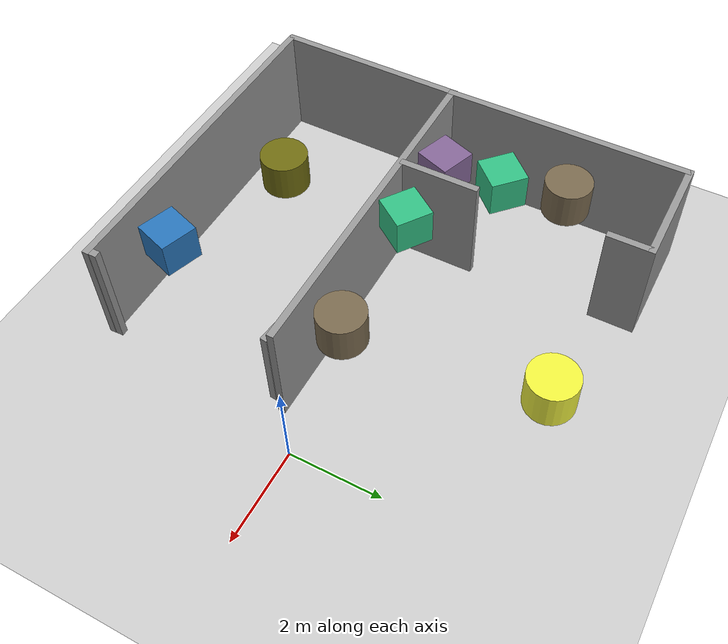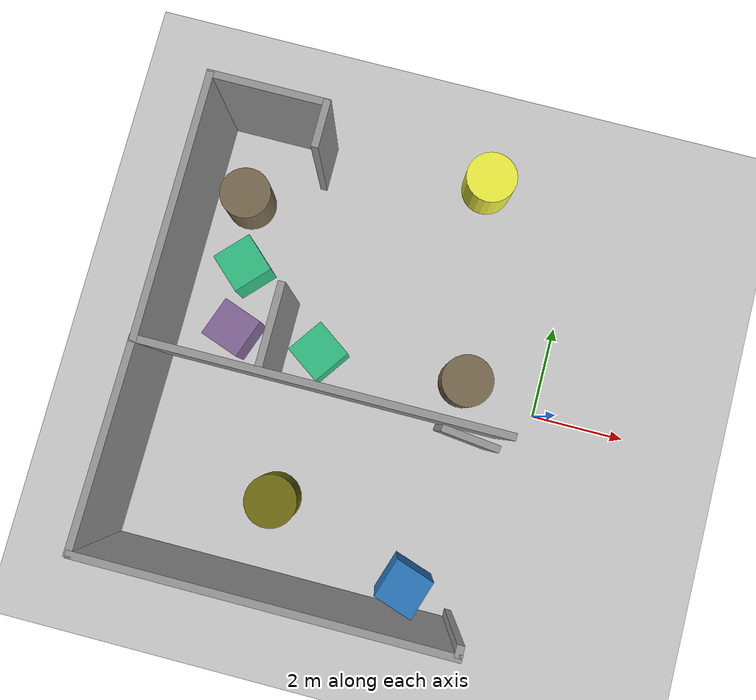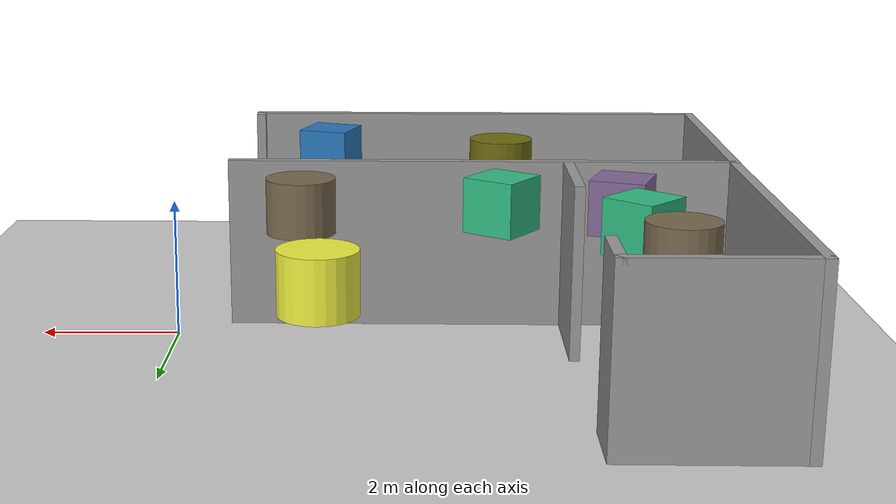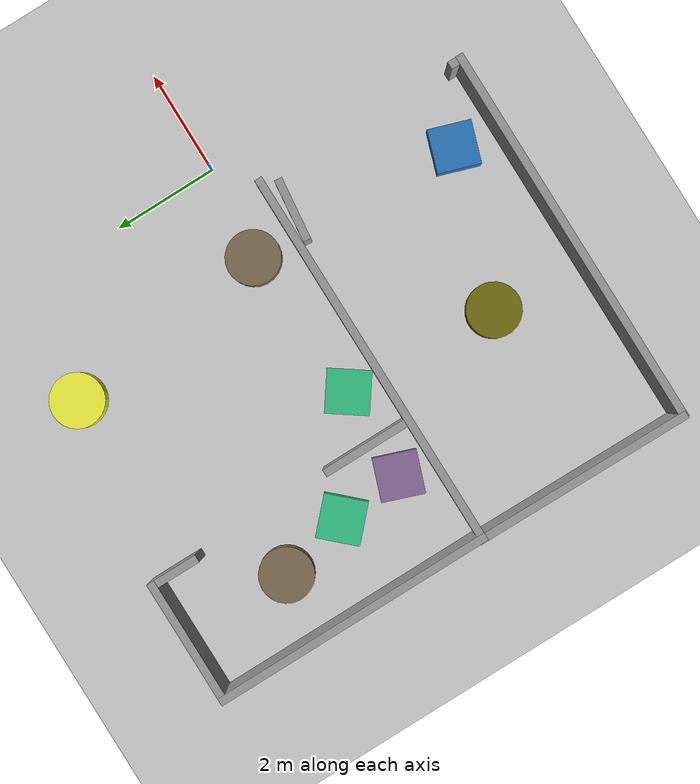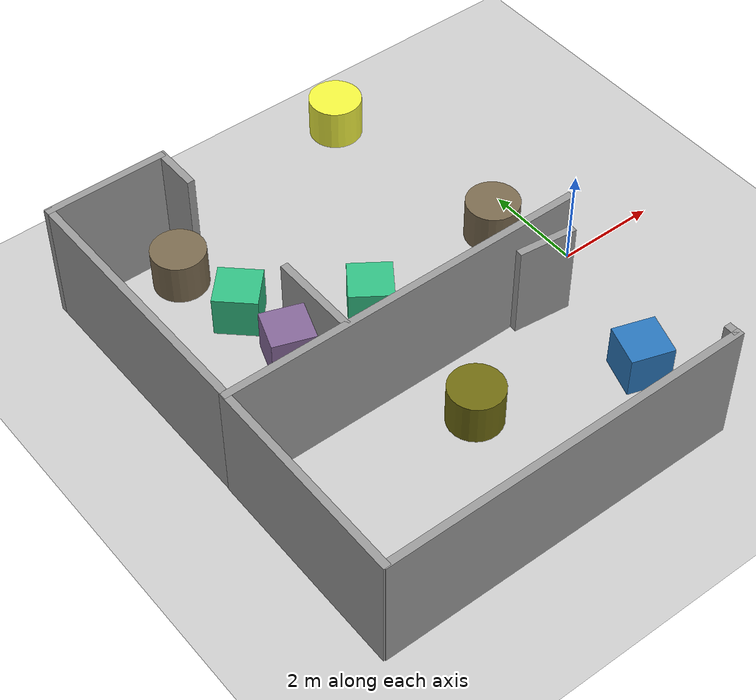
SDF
<sdf version="1.7">
 <world name="default">
  <model name="demo_clean">
   <static>1</static>
   <link name="Wall_0">
    <collision name="Wall_0_Collision">
     <geometry><box><size>5.5 0.15 2.5</size></box></geometry>
     <pose>0 0 1.25 0 -0 0</pose>
     <surface>
      <friction>
       <ode><mu>1</mu><mu2>1</mu2><fdir1>0 0 0</fdir1><slip1>0</slip1><slip2>0</slip2></ode>
       <torsional>
        <coefficient>1</coefficient>
        <patch_radius>0</patch_radius>
        <surface_radius>0</surface_radius>
        <use_patch_radius>1</use_patch_radius>
        <ode><slip>0</slip></ode>
       </torsional>
      </friction>
      <bounce><restitution_coefficient>0</restitution_coefficient><threshold>1e+06</threshold></bounce>
      <contact>
       <collide_without_contact>0</collide_without_contact>
       <collide_without_contact_bitmask>1</collide_without_contact_bitmask>
       <collide_bitmask>1</collide_bitmask>
       <ode>
        <soft_cfm>0</soft_cfm>
        <soft_erp>0.2</soft_erp>
        <kp>1e+13</kp>
        <kd>1</kd>
        <max_vel>0.01</max_vel>
        <min_depth>0</min_depth>
       </ode>
       <bullet>
        <split_impulse>1</split_impulse>
        <split_impulse_penetration_threshold>-0.01</split_impulse_penetration_threshold>
        <soft_cfm>0</soft_cfm>
        <soft_erp>0.2</soft_erp>
        <kp>1e+13</kp>
        <kd>1</kd>
       </bullet>
      </contact>
     </surface>
    </collision>
    <visual name="Wall_0_Visual">
     <geometry><box><size>5.5 0.15 2.5</size></box></geometry>
     <material>
      <script><name>Gazebo/Grey</name><uri>file://media/materials/scripts/gazebo.material</uri></script>
      <ambient>1 1 1 1</ambient>
      <shader type="pixel"><normal_map>default</normal_map></shader>
     </material>
     <pose>0 0 1.25 0 -0 0</pose>
    </visual>
    <pose>-8.14649 2.06618 0 0 0 -1.5708</pose>
   </link>
   <link name="Wall_1">
    <collision name="Wall_1_Collision">
     <geometry><box><size>4.27044 0.15 2.5</size></box></geometry>
     <pose>0 0 1.25 0 -0 0</pose>
     <surface>
      <friction>
       <ode><mu>1</mu><mu2>1</mu2><fdir1>0 0 0</fdir1><slip1>0</slip1><slip2>0</slip2></ode>
       <torsional>
        <coefficient>1</coefficient>
        <patch_radius>0</patch_radius>
        <surface_radius>0</surface_radius>
        <use_patch_radius>1</use_patch_radius>
        <ode><slip>0</slip></ode>
       </torsional>
      </friction>
      <bounce><restitution_coefficient>0</restitution_coefficient><threshold>1e+06</threshold></bounce>
      <contact>
       <collide_without_contact>0</collide_without_contact>
       <collide_without_contact_bitmask>1</collide_without_contact_bitmask>
       <collide_bitmask>1</collide_bitmask>
       <ode>
        <soft_cfm>0</soft_cfm>
        <soft_erp>0.2</soft_erp>
        <kp>1e+13</kp>
        <kd>1</kd>
        <max_vel>0.01</max_vel>
        <min_depth>0</min_depth>
       </ode>
       <bullet>
        <split_impulse>1</split_impulse>
        <split_impulse_penetration_threshold>-0.01</split_impulse_penetration_threshold>
        <soft_cfm>0</soft_cfm>
        <soft_erp>0.2</soft_erp>
        <kp>1e+13</kp>
        <kd>1</kd>
       </bullet>
      </contact>
     </surface>
    </collision>
    <visual name="Wall_1_Visual">
     <geometry><box><size>4.27044 0.15 2.5</size></box></geometry>
     <material>
      <script><name>Gazebo/Grey</name><uri>file://media/materials/scripts/gazebo.material</uri></script>
      <ambient>1 1 1 1</ambient>
      <shader type="pixel"><normal_map>default</normal_map></shader>
     </material>
     <pose>0 0 1.25 0 -0 0</pose>
    </visual>
    <pose>-8.17617 -2.66151 0 0 0 -1.58051</pose>
   </link>
   <link name="Wall_2">
    <collision name="Wall_2_Collision">
     <geometry><box><size>7.5 0.15 2.5</size></box></geometry>
     <pose>0 0 1.25 0 -0 0</pose>
     <surface>
      <friction>
       <ode><mu>1</mu><mu2>1</mu2><fdir1>0 0 0</fdir1><slip1>0</slip1><slip2>0</slip2></ode>
       <torsional>
        <coefficient>1</coefficient>
        <patch_radius>0</patch_radius>
        <surface_radius>0</surface_radius>
        <use_patch_radius>1</use_patch_radius>
        <ode><slip>0</slip></ode>
       </torsional>
      </friction>
      <bounce><restitution_coefficient>0</restitution_coefficient><threshold>1e+06</threshold></bounce>
      <contact>
       <collide_without_contact>0</collide_without_contact>
       <collide_without_contact_bitmask>1</collide_without_contact_bitmask>
       <collide_bitmask>1</collide_bitmask>
       <ode>
        <soft_cfm>0</soft_cfm>
        <soft_erp>0.2</soft_erp>
        <kp>1e+13</kp>
        <kd>1</kd>
        <max_vel>0.01</max_vel>
        <min_depth>0</min_depth>
       </ode>
       <bullet>
        <split_impulse>1</split_impulse>
        <split_impulse_penetration_threshold>-0.01</split_impulse_penetration_threshold>
        <soft_cfm>0</soft_cfm>
        <soft_erp>0.2</soft_erp>
        <kp>1e+13</kp>
        <kd>1</kd>
       </bullet>
      </contact>
     </surface>
    </collision>
    <visual name="Wall_2_Visual">
     <geometry><box><size>7.5 0.15 2.5</size></box></geometry>
     <material>
      <script><name>Gazebo/Grey</name><uri>file://media/materials/scripts/gazebo.material</uri></script>
      <ambient>1 1 1 1</ambient>
      <shader type="pixel"><normal_map>default</normal_map></shader>
     </material>
     <pose>0 0 1.25 0 -0 0</pose>
    </visual>
    <pose>-4.49149 -4.74 0 0 -0 0</pose>
   </link>
   <link name="Wall_21_clone_0_clone_0_clone_clone">
    <gravity>0</gravity>
    <collision name="Wall_21_Collision">
     <geometry><box><size>1.1941 0.15 1.96033</size></box></geometry>
     <pose>0 0 1.25 0 -0 0</pose>
     <surface>
      <friction>
       <ode><mu>1</mu><mu2>1</mu2><fdir1>0 0 0</fdir1><slip1>0</slip1><slip2>0</slip2></ode>
       <torsional>
        <coefficient>1</coefficient>
        <patch_radius>0</patch_radius>
        <surface_radius>0</surface_radius>
        <use_patch_radius>1</use_patch_radius>
        <ode><slip>0</slip></ode>
       </torsional>
      </friction>
      <bounce><restitution_coefficient>0</restitution_coefficient><threshold>1e+06</threshold></bounce>
      <contact>
       <collide_without_contact>0</collide_without_contact>
       <collide_without_contact_bitmask>1</collide_without_contact_bitmask>
       <collide_bitmask>1</collide_bitmask>
       <ode>
        <soft_cfm>0</soft_cfm>
        <soft_erp>0.2</soft_erp>
        <kp>1e+13</kp>
        <kd>1</kd>
        <max_vel>0.01</max_vel>
        <min_depth>0</min_depth>
       </ode>
       <bullet>
        <split_impulse>1</split_impulse>
        <split_impulse_penetration_threshold>-0.01</split_impulse_penetration_threshold>
        <soft_cfm>0</soft_cfm>
        <soft_erp>0.2</soft_erp>
        <kp>1e+13</kp>
        <kd>1</kd>
       </bullet>
      </contact>
     </surface>
    </collision>
    <visual name="Wall_21_Visual">
     <geometry><box><size>1.1941 0.15 1.96033</size></box></geometry>
     <material>
      <script><name>Gazebo/Grey</name><uri>file://media/materials/scripts/gazebo.material</uri></script>
      <ambient>1 1 1 1</ambient>
      <shader type="pixel"><normal_map>__default__</normal_map></shader>
      <diffuse>0.7 0.7 0.7 1</diffuse>
      <specular>0.01 0.01 0.01 1</specular>
      <emissive>0 0 0 1</emissive>
     </material>
     <pose>0 0 1.25 0 -0 0</pose>
    </visual>
    <inertial>
     <inertia><ixx>0</ixx><iyy>0</iyy><izz>0</izz><ixy>0</ixy><ixz>0</ixz><iyz>0</iyz></inertia>
     <mass>1</mass>
    </inertial>
    <pose>-1.47342 -0.839052 -0.23202 0 -0 3.0297</pose>
   </link>
   <link name="Wall_21_clone_clone">
    <collision name="Wall_21_Collision">
     <geometry><box><size>0.240964 0.15 2.5</size></box></geometry>
     <pose>0 0 1.25 0 -0 0</pose>
     <surface>
      <friction>
       <ode><mu>1</mu><mu2>1</mu2><fdir1>0 0 0</fdir1><slip1>0</slip1><slip2>0</slip2></ode>
       <torsional>
        <coefficient>1</coefficient>
        <patch_radius>0</patch_radius>
        <surface_radius>0</surface_radius>
        <use_patch_radius>1</use_patch_radius>
        <ode><slip>0</slip></ode>
       </torsional>
      </friction>
      <bounce><restitution_coefficient>0</restitution_coefficient><threshold>1e+06</threshold></bounce>
      <contact>
       <collide_without_contact>0</collide_without_contact>
       <collide_without_contact_bitmask>1</collide_without_contact_bitmask>
       <collide_bitmask>1</collide_bitmask>
       <ode>
        <soft_cfm>0</soft_cfm>
        <soft_erp>0.2</soft_erp>
        <kp>1e+13</kp>
        <kd>1</kd>
        <max_vel>0.01</max_vel>
        <min_depth>0</min_depth>
       </ode>
       <bullet>
        <split_impulse>1</split_impulse>
        <split_impulse_penetration_threshold>-0.01</split_impulse_penetration_threshold>
        <soft_cfm>0</soft_cfm>
        <soft_erp>0.2</soft_erp>
        <kp>1e+13</kp>
        <kd>1</kd>
       </bullet>
      </contact>
     </surface>
    </collision>
    <visual name="Wall_21_Visual">
     <geometry><box><size>0.240964 0.15 2.5</size></box></geometry>
     <material>
      <script><name>Gazebo/Grey</name><uri>file://media/materials/scripts/gazebo.material</uri></script>
      <ambient>1 1 1 1</ambient>
      <shader type="pixel"><normal_map>default</normal_map></shader>
     </material>
     <pose>0 0 1.25 0 -0 0</pose>
    </visual>
    <inertial>
     <inertia><ixx>0</ixx><iyy>0</iyy><izz>0</izz><ixy>0</ixy><ixz>0</ixz><iyz>0</iyz></inertia>
     <mass>1</mass>
    </inertial>
    <pose>-0.824993 -4.62184 0 0 0 -1.5708</pose>
   </link>
   <link name="Wall_4">
    <collision name="Wall_4_Collision">
     <geometry><box><size>7.5 0.15 2.5</size></box></geometry>
     <pose>0 0 1.25 0 -0 0</pose>
     <surface>
      <friction>
       <ode><mu>1</mu><mu2>1</mu2><fdir1>0 0 0</fdir1><slip1>0</slip1><slip2>0</slip2></ode>
       <torsional>
        <coefficient>1</coefficient>
        <patch_radius>0</patch_radius>
        <surface_radius>0</surface_radius>
        <use_patch_radius>1</use_patch_radius>
        <ode><slip>0</slip></ode>
       </torsional>
      </friction>
      <bounce><restitution_coefficient>0</restitution_coefficient><threshold>1e+06</threshold></bounce>
      <contact>
       <collide_without_contact>0</collide_without_contact>
       <collide_without_contact_bitmask>1</collide_without_contact_bitmask>
       <collide_bitmask>1</collide_bitmask>
       <ode>
        <soft_cfm>0</soft_cfm>
        <soft_erp>0.2</soft_erp>
        <kp>1e+13</kp>
        <kd>1</kd>
        <max_vel>0.01</max_vel>
        <min_depth>0</min_depth>
       </ode>
       <bullet>
        <split_impulse>1</split_impulse>
        <split_impulse_penetration_threshold>-0.01</split_impulse_penetration_threshold>
        <soft_cfm>0</soft_cfm>
        <soft_erp>0.2</soft_erp>
        <kp>1e+13</kp>
        <kd>1</kd>
       </bullet>
      </contact>
     </surface>
    </collision>
    <visual name="Wall_4_Visual">
     <geometry><box><size>7.5 0.15 2.5</size></box></geometry>
     <material>
      <script><name>Gazebo/Grey</name><uri>file://media/materials/scripts/gazebo.material</uri></script>
      <ambient>1 1 1 1</ambient>
      <shader type="pixel"><normal_map>default</normal_map></shader>
     </material>
     <pose>0 0 1.25 0 -0 0</pose>
    </visual>
    <pose>-4.47149 -0.608824 0 0 -0 3.14159</pose>
   </link>
   <link name="Wall_44">
    <collision name="Wall_44_Collision">
     <geometry><box><size>1.75 0.15 2.5</size></box></geometry>
     <pose>0 0 1.25 0 -0 0</pose>
     <surface>
      <friction>
       <ode><mu>1</mu><mu2>1</mu2><fdir1>0 0 0</fdir1><slip1>0</slip1><slip2>0</slip2></ode>
       <torsional>
        <coefficient>1</coefficient>
        <patch_radius>0</patch_radius>
        <surface_radius>0</surface_radius>
        <use_patch_radius>1</use_patch_radius>
        <ode><slip>0</slip></ode>
       </torsional>
      </friction>
      <bounce><restitution_coefficient>0</restitution_coefficient><threshold>1e+06</threshold></bounce>
      <contact>
       <collide_without_contact>0</collide_without_contact>
       <collide_without_contact_bitmask>1</collide_without_contact_bitmask>
       <collide_bitmask>1</collide_bitmask>
       <ode>
        <soft_cfm>0</soft_cfm>
        <soft_erp>0.2</soft_erp>
        <kp>1e+13</kp>
        <kd>1</kd>
        <max_vel>0.01</max_vel>
        <min_depth>0</min_depth>
       </ode>
       <bullet>
        <split_impulse>1</split_impulse>
        <split_impulse_penetration_threshold>-0.01</split_impulse_penetration_threshold>
        <soft_cfm>0</soft_cfm>
        <soft_erp>0.2</soft_erp>
        <kp>1e+13</kp>
        <kd>1</kd>
       </bullet>
      </contact>
     </surface>
    </collision>
    <visual name="Wall_44_Visual">
     <geometry><box><size>1.75 0.15 2.5</size></box></geometry>
     <material>
      <script><name>Gazebo/Grey</name><uri>file://media/materials/scripts/gazebo.material</uri></script>
      <ambient>1 1 1 1</ambient>
      <shader type="pixel"><normal_map>default</normal_map></shader>
     </material>
     <pose>0 0 1.25 0 -0 0</pose>
    </visual>
    <pose>-5.71903 0.262602 0 0 0 -1.5708</pose>
   </link>
   <link name="Wall_6">
    <collision name="Wall_6_Collision">
     <geometry><box><size>2.5 0.15 2.5</size></box></geometry>
     <pose>0 0 1.25 0 -0 0</pose>
     <surface>
      <friction>
       <ode><mu>1</mu><mu2>1</mu2><fdir1>0 0 0</fdir1><slip1>0</slip1><slip2>0</slip2></ode>
       <torsional>
        <coefficient>1</coefficient>
        <patch_radius>0</patch_radius>
        <surface_radius>0</surface_radius>
        <use_patch_radius>1</use_patch_radius>
        <ode><slip>0</slip></ode>
       </torsional>
      </friction>
      <bounce><restitution_coefficient>0</restitution_coefficient><threshold>1e+06</threshold></bounce>
      <contact>
       <collide_without_contact>0</collide_without_contact>
       <collide_without_contact_bitmask>1</collide_without_contact_bitmask>
       <collide_bitmask>1</collide_bitmask>
       <ode>
        <soft_cfm>0</soft_cfm>
        <soft_erp>0.2</soft_erp>
        <kp>1e+13</kp>
        <kd>1</kd>
        <max_vel>0.01</max_vel>
        <min_depth>0</min_depth>
       </ode>
       <bullet>
        <split_impulse>1</split_impulse>
        <split_impulse_penetration_threshold>-0.01</split_impulse_penetration_threshold>
        <soft_cfm>0</soft_cfm>
        <soft_erp>0.2</soft_erp>
        <kp>1e+13</kp>
        <kd>1</kd>
       </bullet>
      </contact>
     </surface>
    </collision>
    <visual name="Wall_6_Visual">
     <geometry><box><size>2.5 0.15 2.5</size></box></geometry>
     <material>
      <script><name>Gazebo/Grey</name><uri>file://media/materials/scripts/gazebo.material</uri></script>
      <ambient>1 1 1 1</ambient>
      <shader type="pixel"><normal_map>default</normal_map></shader>
     </material>
     <pose>0 0 1.25 0 -0 0</pose>
    </visual>
    <pose>-6.97149 4.74118 0 0 -0 0</pose>
   </link>
   <link name="Wall_7">
    <collision name="Wall_7_Collision">
     <geometry><box><size>1 0.15 2.5</size></box></geometry>
     <pose>0 0 1.25 0 -0 0</pose>
     <surface>
      <friction>
       <ode><mu>1</mu><mu2>1</mu2><fdir1>0 0 0</fdir1><slip1>0</slip1><slip2>0</slip2></ode>
       <torsional>
        <coefficient>1</coefficient>
        <patch_radius>0</patch_radius>
        <surface_radius>0</surface_radius>
        <use_patch_radius>1</use_patch_radius>
        <ode><slip>0</slip></ode>
       </torsional>
      </friction>
      <bounce><restitution_coefficient>0</restitution_coefficient><threshold>1e+06</threshold></bounce>
      <contact>
       <collide_without_contact>0</collide_without_contact>
       <collide_without_contact_bitmask>1</collide_without_contact_bitmask>
       <collide_bitmask>1</collide_bitmask>
       <ode>
        <soft_cfm>0</soft_cfm>
        <soft_erp>0.2</soft_erp>
        <kp>1e+13</kp>
        <kd>1</kd>
        <max_vel>0.01</max_vel>
        <min_depth>0</min_depth>
       </ode>
       <bullet>
        <split_impulse>1</split_impulse>
        <split_impulse_penetration_threshold>-0.01</split_impulse_penetration_threshold>
        <soft_cfm>0</soft_cfm>
        <soft_erp>0.2</soft_erp>
        <kp>1e+13</kp>
        <kd>1</kd>
       </bullet>
      </contact>
     </surface>
    </collision>
    <visual name="Wall_7_Visual">
     <geometry><box><size>1 0.15 2.5</size></box></geometry>
     <material>
      <script><name>Gazebo/Grey</name><uri>file://media/materials/scripts/gazebo.material</uri></script>
      <ambient>1 1 1 1</ambient>
      <shader type="pixel"><normal_map>default</normal_map></shader>
     </material>
     <pose>0 0 1.25 0 -0 0</pose>
    </visual>
    <pose>-5.79649 4.31618 0 0 0 -1.5708</pose>
   </link>
  </model>
  <model name="static_cylinder">
   <pose>-1.84476 0.195313 2 0 -0 0.460965</pose>
   <static>1</static>
   <allow_auto_disable>0</allow_auto_disable>
   <link name="link">
    <collision name="collision">
     <geometry><cylinder><radius>0.5</radius><length>0.8</length></cylinder></geometry>
     <max_contacts>20</max_contacts>
    </collision>
    <visual name="visual">
     <geometry><cylinder><radius>0.5</radius><length>0.8</length></cylinder></geometry>
     <material>
      <ambient>0.478431 0.415686 0.309804 1</ambient>
      <diffuse>0.478431 0.415686 0.309804 1</diffuse>
     </material>
    </visual>
   </link>
  </model>
  <model name="dyn_box_1">
   <pose>-6.44214 0.056247 2 0 0 -0.344654</pose>
   <static>1</static>
   <allow_auto_disable>0</allow_auto_disable>
   <link name="link">
    <collision name="collision">
     <geometry><box><size>0.8 0.8 0.8</size></box></geometry>
     <max_contacts>20</max_contacts>
    </collision>
    <visual name="visual">
     <geometry><box><size>0.8 0.8 0.8</size></box></geometry>
     <material>
      <ambient>0.521569 0.403922 0.596078 1</ambient>
      <diffuse>0.521569 0.403922 0.596078 1</diffuse>
     </material>
    </visual>
   </link>
  </model>
  <model name="static_cylinder_1">
   <pose>-4.86022 -2.90154 2 0 0 -1.1687</pose>
   <static>1</static>
   <allow_auto_disable>0</allow_auto_disable>
   <link name="link">
    <collision name="collision">
     <geometry><cylinder><radius>0.5</radius><length>0.8</length></cylinder></geometry>
     <max_contacts>20</max_contacts>
    </collision>
    <visual name="visual">
     <geometry><cylinder><radius>0.5</radius><length>0.8</length></cylinder></geometry>
     <material>
      <ambient>0.439216 0.423529 0.0666667 1</ambient>
      <diffuse>0.439216 0.423529 0.0666667 1</diffuse>
     </material>
    </visual>
   </link>
  </model>
  <model name="static_cylinder_3">
   <pose>-2.33497 4.13854 2 0 -0 0.502179</pose>
   <static>1</static>
   <allow_auto_disable>0</allow_auto_disable>
   <link name="link">
    <collision name="collision">
     <geometry><cylinder><radius>0.5</radius><length>0.8</length></cylinder></geometry>
     <max_contacts>20</max_contacts>
    </collision>
    <visual name="visual">
     <geometry><cylinder><radius>0.5</radius><length>0.8</length></cylinder></geometry>
     <material>
      <ambient>0.945098 0.952941 0.247059 1</ambient>
      <diffuse>0.945098 0.952941 0.247059 1</diffuse>
     </material>
    </visual>
   </link>
  </model>
  <model name="dyn_box_6">
   <pose>-2.06061 -3.82652 2 0 0 -1.89028</pose>
   <static>1</static>
   <allow_auto_disable>0</allow_auto_disable>
   <link name="link">
    <collision name="collision">
     <geometry><box><size>0.8 0.8 0.8</size></box></geometry>
     <max_contacts>20</max_contacts>
    </collision>
    <visual name="visual">
     <geometry><box><size>0.8 0.8 0.8</size></box></geometry>
     <material>
      <ambient>0.160784 0.462745 0.733333 1</ambient>
      <diffuse>0.160784 0.462745 0.733333 1</diffuse>
     </material>
    </visual>
   </link>
  </model>
  <model name="dyn_box_7">
   <pose>-6.56547 1.3088 2 0 0 -2.32405</pose>
   <static>1</static>
   <allow_auto_disable>0</allow_auto_disable>
   <link name="link">
    <collision name="collision">
     <geometry><box><size>0.8 0.8 0.8</size></box></geometry>
     <max_contacts>20</max_contacts>
    </collision>
    <visual name="visual">
     <geometry><box><size>0.8 0.8 0.8</size></box></geometry>
     <material>
      <ambient>0.196078 0.74902 0.517647 1</ambient>
      <diffuse>0.196078 0.74902 0.517647 1</diffuse>
     </material>
    </visual>
   </link>
  </model>
  <model name="ground_plane">
   <static>1</static>
   <link name="link">
    <collision name="collision">
     <geometry><plane><normal>0 0 1</normal><size>100 100</size></plane></geometry>
     <surface>
      <contact><collide_bitmask>65535</collide_bitmask></contact>
      <friction><ode><mu>100</mu><mu2>50</mu2></ode></friction>
     </surface>
    </collision>
    <visual name="visual">
     <cast_shadows>0</cast_shadows>
     <geometry><plane><normal>0 0 1</normal><size>100 100</size></plane></geometry>
     <material>
      <script><uri>file://media/materials/scripts/gazebo.material</uri><name>Gazebo/Grey</name></script>
     </material>
    </visual>
   </link>
  </model>
  <model name="dyn_box_7_clone">
   <pose>-4.72255 0.028897 2 0 0 -2.18529</pose>
   <static>1</static>
   <allow_auto_disable>0</allow_auto_disable>
   <link name="link">
    <collision name="collision">
     <geometry><box><size>0.8 0.8 0.8</size></box></geometry>
     <max_contacts>20</max_contacts>
    </collision>
    <visual name="visual">
     <geometry><box><size>0.8 0.8 0.8</size></box></geometry>
     <material>
      <ambient>0.196078 0.74902 0.517647 1</ambient>
      <diffuse>0.196078 0.74902 0.517647 1</diffuse>
     </material>
    </visual>
   </link>
  </model>
  <model name="static_cylinder_clone">
   <pose>-6.87374 2.64409 2 0 -0 0.460965</pose>
   <static>1</static>
   <allow_auto_disable>0</allow_auto_disable>
   <link name="link">
    <collision name="collision">
     <geometry><cylinder><radius>0.5</radius><length>0.8</length></cylinder></geometry>
     <max_contacts>20</max_contacts>
    </collision>
    <visual name="visual">
     <geometry><cylinder><radius>0.5</radius><length>0.8</length></cylinder></geometry>
     <material>
      <ambient>0.478431 0.415686 0.309804 1</ambient>
      <diffuse>0.478431 0.415686 0.309804 1</diffuse>
     </material>
    </visual>
   </link>
  </model>
 </world>
</sdf>
